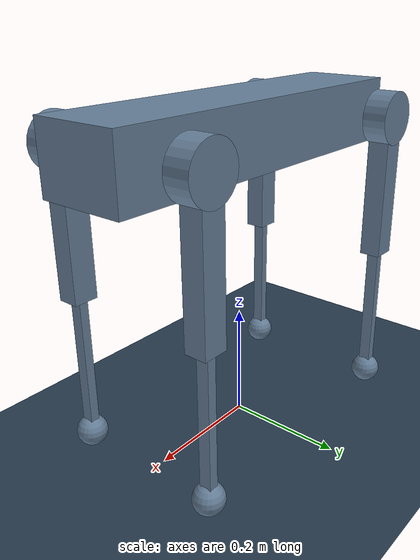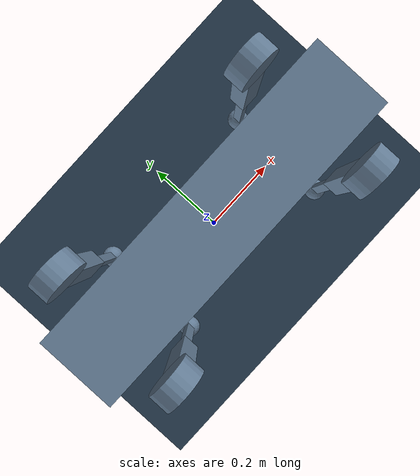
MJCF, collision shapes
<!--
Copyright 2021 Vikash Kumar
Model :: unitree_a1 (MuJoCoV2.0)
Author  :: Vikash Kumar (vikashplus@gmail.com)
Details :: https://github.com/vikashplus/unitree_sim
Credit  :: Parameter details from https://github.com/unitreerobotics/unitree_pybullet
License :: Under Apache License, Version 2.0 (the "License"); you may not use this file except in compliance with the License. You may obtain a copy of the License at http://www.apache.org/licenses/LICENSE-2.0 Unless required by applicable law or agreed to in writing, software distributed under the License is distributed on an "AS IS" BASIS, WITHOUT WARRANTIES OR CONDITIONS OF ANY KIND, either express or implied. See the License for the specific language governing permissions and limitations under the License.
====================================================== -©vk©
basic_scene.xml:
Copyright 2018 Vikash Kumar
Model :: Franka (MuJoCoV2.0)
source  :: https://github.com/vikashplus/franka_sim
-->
<mujoco model="unitree_aliengo">
    <compiler angle="radian" />
    <size njmax="500" nconmax="100" />

    <asset>
        <mesh name="trunk" file="/home/george/code/umi-on-legs/mani-centric-wbc/resources/robots/aliengo_description/meshes/trunk.stl" />
        <mesh name="hip" file="/home/george/code/umi-on-legs/mani-centric-wbc/resources/robots/aliengo_description/meshes/hip.stl" />
        <mesh name="thigh_mirror" file="/home/george/code/umi-on-legs/mani-centric-wbc/resources/robots/aliengo_description/meshes/thigh_mirror.stl" />
        <mesh name="calf" file="/home/george/code/umi-on-legs/mani-centric-wbc/resources/robots/aliengo_description/meshes/calf.stl" />
        <mesh name="thigh" file="/home/george/code/umi-on-legs/mani-centric-wbc/resources/robots/aliengo_description/meshes/thigh.stl" />
        <material name="metal_grey" specular=".8" shininess=".8"/>
    </asset>

    <default>
        <default class="aliengo">
            <joint limited="true" damping="0.5" armature="0.01" frictionloss=".2" range="-1.57 1.57"/>
            <geom contype="1" conaffinity="0" condim="4" margin="0.001" solref=".02 1" solimp=".8 .9 .01" group="4" rgba=".4 .5 .6 1"/>
            <position ctrllimited="true"/>
            <default class="viz_metal_grey">
                <geom contype="0" conaffinity="0" type="mesh" material="metal_grey" rgba=".2 .2 .25 1" mass="0" group="1"/>
            </default>
        </default>
    </default>

    <include file="basic_scene.xml"/>

    <worldbody>
        <body name="aliengo_torso" pos="0 0 0.525" childclass="aliengo">
            <site name='imu' size='0.01' pos='0.0 0 0.0'/>
            <geom size="0.0005 0.0005 0.0005" type="box" contype="0" conaffinity="0" group="1" />
            <geom class="viz_metal_grey" mesh="trunk" />
            <geom size="0.3235 0.075 0.056" type="box"/>
            <geom size="0.0005 0.0005 0.0005" type="box" contype="0" conaffinity="0" group="1" rgba="0.8 0 0 1" />
            <geom size="0.0005 0.0005 0.0005" type="box" rgba="0.8 0 0 1" />
            <freejoint/>
            <body name="FL_hip" pos="0.2399 0.051 0">
                <inertial pos="-0.022191 0.015144 -1.5e-05" quat="-0.0135493 0.706835 0.0117635 0.707151" mass="1.993" diaginertia="0.00558695 0.00491009 0.00290132" />
                <joint name="FL_hip" pos="0 0 0" axis="1 0 0" limited="true" range="-1.22173 1.22173" />
                <geom class="viz_metal_grey" mesh="hip" />
                <geom size="0.046 0.0209" pos="0 0.083 0" quat="0.707107 0.707107 0 0" type="cylinder"/>
                <body name="FL_thigh" pos="0 0.083 0">
                    <inertial pos="-0.005607 -0.003877 -0.048199" quat="0.717987 -0.031246 -0.0335669 0.694544" mass="0.639" diaginertia="0.0058474 0.00571186 0.000324584" />
                    <joint name="FL_thigh" pos="0 0 0" axis="0 1 0" />
                    <geom class="viz_metal_grey" mesh="thigh" />
                    <geom size="0.125 0.0187 0.0215" pos="0 0 -0.125" quat="0.707107 0 0.707107 0" type="box"/>
                    <body name="FL_calf" pos="0 0 -0.25">
                        <inertial pos="0.00215606 4.88427e-05 -0.166671" quat="0.707462 0.00517582 0.00535172 0.706712" mass="0.267" diaginertia="0.00690975 0.00689712 5.4885e-05" />
                        <joint name="FL_calf" pos="0 0 0" axis="0 1 0" limited="true" range="-2.77507 -0.645772" />
                        <geom class="viz_metal_grey" mesh="calf" />
                        <geom size="0.125 0.0104 0.008" pos="0 0 -0.125" quat="0.707107 0 0.707107 0" type="box"/>
                        <geom size="0.0165" pos="0 0 -0.25" contype="0" conaffinity="0" group="1" rgba="0 0.8 0 1" />
                        <geom size="0.0265" pos="0 0 -0.25"/>
                    </body>
                </body>
            </body>
            <body name="FR_hip" pos="0.2399 -0.051 0">
                <inertial pos="-0.022191 -0.015144 -1.5e-05" quat="0.0135493 0.706835 -0.0117635 0.707151" mass="1.993" diaginertia="0.00558695 0.00491009 0.00290132" />
                <joint name="FR_hip" pos="0 0 0" axis="1 0 0" limited="true" range="-1.22173 1.22173" />
                <geom quat="0 1 0 0" class="viz_metal_grey" mesh="hip" />
                <geom size="0.046 0.0209" pos="0 -0.083 0" quat="0.707107 0.707107 0 0" type="cylinder"/>
                <body name="FR_thigh" pos="0 -0.083 0">
                    <inertial pos="-0.005607 0.003877 -0.048199" quat="0.694544 -0.0335669 -0.031246 0.717987" mass="0.639" diaginertia="0.0058474 0.00571186 0.000324584" />
                    <joint name="FR_thigh" pos="0 0 0" axis="0 1 0" />
                    <geom class="viz_metal_grey" mesh="thigh_mirror" />
                    <geom size="0.125 0.0187 0.0215" pos="0 0 -0.125" quat="0.707107 0 0.707107 0" type="box"/>
                    <body name="FR_calf" pos="0 0 -0.25">
                        <inertial pos="0.00215606 4.88427e-05 -0.166671" quat="0.707462 0.00517582 0.00535172 0.706712" mass="0.267" diaginertia="0.00690975 0.00689712 5.4885e-05" />
                        <joint name="FR_calf" pos="0 0 0" axis="0 1 0" limited="true" range="-2.77507 -0.645772" />
                        <geom class="viz_metal_grey" mesh="calf" />
                        <geom size="0.125 0.0104 0.008" pos="0 0 -0.125" quat="0.707107 0 0.707107 0" type="box"/>
                        <geom size="0.0165" pos="0 0 -0.25" contype="0" conaffinity="0" group="1" rgba="0 0.8 0 1" />
                        <geom size="0.0265" pos="0 0 -0.25"/>
                    </body>
                </body>
            </body>
            <body name="RL_hip" pos="-0.2399 0.051 0">
                <inertial pos="0.022191 0.015144 -1.5e-05" quat="0.0117635 0.707151 -0.0135493 0.706835" mass="1.993" diaginertia="0.00558695 0.00491009 0.00290132" />
                <joint name="RL_hip" pos="0 0 0" axis="1 0 0" limited="true" range="-1.22173 1.22173" />
                <geom quat="0 0 1 0" class="viz_metal_grey" mesh="hip" />
                <geom size="0.046 0.0209" pos="0 0.083 0" quat="0.707107 0.707107 0 0" type="cylinder"/>
                <body name="RL_thigh" pos="0 0.083 0">
                    <inertial pos="-0.005607 -0.003877 -0.048199" quat="0.717987 -0.031246 -0.0335669 0.694544" mass="0.639" diaginertia="0.0058474 0.00571186 0.000324584" />
                    <joint name="RL_thigh" pos="0 0 0" axis="0 1 0" />
                    <geom class="viz_metal_grey" mesh="thigh" />
                    <geom size="0.125 0.0187 0.0215" pos="0 0 -0.125" quat="0.707107 0 0.707107 0" type="box"/>
                    <body name="RL_calf" pos="0 0 -0.25">
                        <inertial pos="0.00215606 4.88427e-05 -0.166671" quat="0.707462 0.00517582 0.00535172 0.706712" mass="0.267" diaginertia="0.00690975 0.00689712 5.4885e-05" />
                        <joint name="RL_calf" pos="0 0 0" axis="0 1 0" limited="true" range="-2.77507 -0.645772" />
                        <geom class="viz_metal_grey" mesh="calf" />
                        <geom size="0.125 0.0104 0.008" pos="0 0 -0.125" quat="0.707107 0 0.707107 0" type="box"/>
                        <geom size="0.0165" pos="0 0 -0.25" contype="0" conaffinity="0" group="1" rgba="0 0.8 0 1" />
                        <geom size="0.0265" pos="0 0 -0.25"/>
                    </body>
                </body>
            </body>
            <body name="RR_hip" pos="-0.2399 -0.051 0">
                <inertial pos="0.022191 -0.015144 -1.5e-05" quat="-0.0117635 0.707151 0.0135493 0.706835" mass="1.993" diaginertia="0.00558695 0.00491009 0.00290132" />
                <joint name="RR_hip" pos="0 0 0" axis="1 0 0" limited="true" range="-1.22173 1.22173" />
                <geom quat="0 0 0 -1" class="viz_metal_grey" mesh="hip" />
                <geom size="0.046 0.0209" pos="0 -0.083 0" quat="0.707107 0.707107 0 0" type="cylinder"/>
                <body name="RR_thigh" pos="0 -0.083 0">
                    <inertial pos="-0.005607 0.003877 -0.048199" quat="0.694544 -0.0335669 -0.031246 0.717987" mass="0.639" diaginertia="0.0058474 0.00571186 0.000324584" />
                    <joint name="RR_thigh" pos="0 0 0" axis="0 1 0" />
                    <geom class="viz_metal_grey" mesh="thigh_mirror" />
                    <geom size="0.125 0.0187 0.0215" pos="0 0 -0.125" quat="0.707107 0 0.707107 0" type="box"/>
                    <body name="RR_calf" pos="0 0 -0.25">
                        <inertial pos="0.00215606 4.88427e-05 -0.166671" quat="0.707462 0.00517582 0.00535172 0.706712" mass="0.267" diaginertia="0.00690975 0.00689712 5.4885e-05" />
                        <joint name="RR_calf" pos="0 0 0" axis="0 1 0" limited="true" range="-2.77507 -0.645772" />
                        <geom class="viz_metal_grey" mesh="calf" />
                        <geom size="0.125 0.0104 0.008" pos="0 0 -0.125" quat="0.707107 0 0.707107 0" type="box"/>
                        <geom size="0.0165" pos="0 0 -0.25" contype="0" conaffinity="0" group="1" rgba="0 0.8 0 1" />
                        <geom size="0.0265" pos="0 0 -0.25"/>
                    </body>
                </body>
            </body>

        </body>
    </worldbody>

    <actuator>
        <position name="FL_hip" kp="60" joint="FL_hip" class="aliengo" ctrlrange="-0.802851 0.802851"/>
        <position name="FL_thigh" kp="60" joint="FL_thigh" class="aliengo" ctrlrange="-1.0472 4.18879"/>
        <position name="FL_calf" kp="93.3" joint="FL_calf" class="aliengo" ctrlrange="-2.69653 -0.916298"/>
        <position name="FR_hip" kp="60" joint="FR_hip" class="aliengo" ctrlrange="-0.802851 0.802851"/>
        <position name="FR_thigh" kp="60" joint="FR_thigh" class="aliengo" ctrlrange="-1.0472 4.18879"/>
        <position name="FR_calf" kp="93.3" joint="FR_calf" class="aliengo" ctrlrange="-2.69653 -0.916298"/>
        <position name="RL_hip" kp="60" joint="RL_hip" class="aliengo" ctrlrange="-0.802851 0.802851"/>
        <position name="RL_thigh" kp="60" joint="RL_thigh" class="aliengo" ctrlrange="-1.0472 4.18879"/>
        <position name="RL_calf" kp="93.3" joint="RL_calf" class="aliengo" ctrlrange="-2.69653 -0.916298"/>
        <position name="RR_hip" kp="60" joint="RR_hip" class="aliengo" ctrlrange="-0.802851 0.802851"/>
        <position name="RR_thigh" kp="60" joint="RR_thigh" class="aliengo" ctrlrange="-1.0472 4.18879"/>
        <position name="RR_calf" kp="93.3" joint="RR_calf" class="aliengo" ctrlrange="-2.69653 -0.916298"/>

    </actuator>

    <sensor>

        <framequat     name='orientation' objtype='site' noise='0.001' objname='imu'/>
        <framepos     name='position' objtype='site' noise='0.001' objname='imu'/>
        <gyro          name='angular-velocity'    site='imu' noise='0.005' cutoff='34.9'/>
        <velocimeter   name='linear-velocity'     site='imu' noise='0.001' cutoff='30'/>
        <accelerometer name='linear-acceleration' site='imu' noise='0.005' cutoff='157'/>
        <magnetometer  name='magnetometer'        site='imu'/>
    </sensor>
</mujoco>

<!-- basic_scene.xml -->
<mujocoinclude>

    <asset>
        <texture name="texplane" type="2d" builtin="checker" rgb1=".2 .3 .4" rgb2=".1 0.15 0.2"
                width="1024" height="1024"/>
        <material name="MatGnd" reflectance="0.5" texture="texplane" texrepeat="1 1" texuniform="true"/>
    </asset>

    <worldbody>
        <light directional="false" diffuse=".8 .8 .8" specular="0.3 0.3 0.3" pos="1  1 3" dir="-1 -1 -3"/>
        <light directional="false" diffuse=".8 .8 .8" specular="0.3 0.3 0.3" pos="1 -1 3" dir="-1 1 -3"/>
        <light directional="false" diffuse=".8 .8 .8" specular="0.3 0.3 0.3" pos="-1 0 3" dir="1 0 -3" />
        <geom name="ground" pos="0 0 0" size="5 5 10" material="MatGnd" type="plane" contype="1" conaffinity="1"/>
    </worldbody>
</mujocoinclude>
